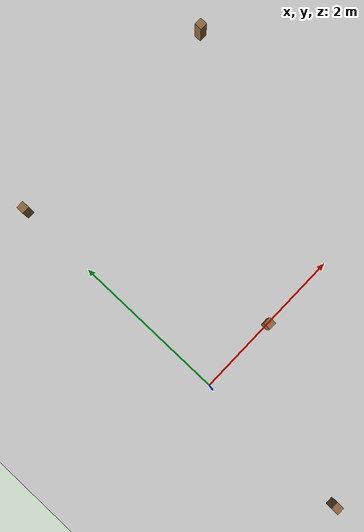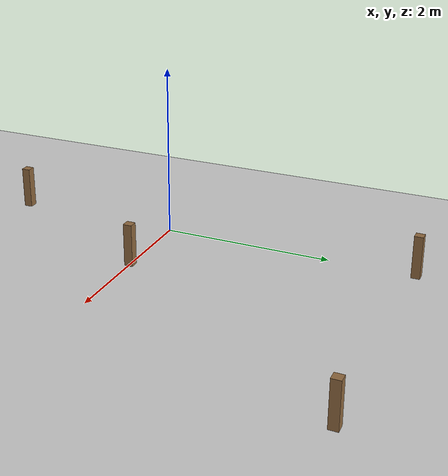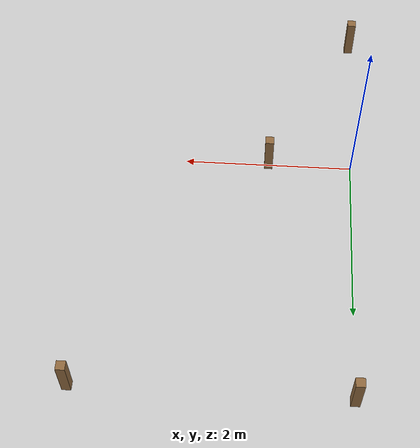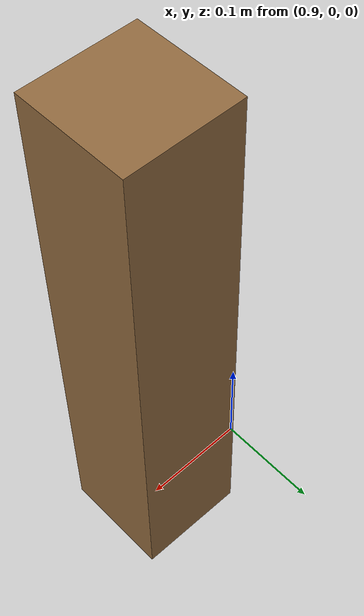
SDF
<?xml version="1.0"?>
<sdf version="1.6">
  <world name="maze">

    <plugin filename="libignition-gazebo-physics-system.so" name="ignition::gazebo::systems::Physics"/>
    <plugin filename="libignition-gazebo-sensors-system.so" name="ignition::gazebo::systems::Sensors">
      <render_engine>ogre2</render_engine>
    </plugin>
    <plugin filename="libignition-gazebo-user-commands-system.so" name="ignition::gazebo::systems::UserCommands"/>
    <plugin filename="libignition-gazebo-scene-broadcaster-system.so" name="ignition::gazebo::systems::SceneBroadcaster"/>

    <plugin filename="ignition-gazebo-contact-system" name="ignition::gazebo::systems::Contact"/>
    <plugin filename="libignition-gazebo-imu-system.so" name="ignition::gazebo::systems::Imu"/>
    <plugin filename="ignition-gazebo-magnetometer-system" name="ignition::gazebo::systems::Magnetometer"/>

    <scene>
      <grid>false</grid>
    </scene>

    <gui fullscreen="0">
      <!-- 3D scene -->
      <plugin filename="GzScene3D" name="3D View">
        <ignition-gui>
          <title>3D View</title>
          <property type="bool" key="showTitleBar">false</property>
          <property type="string" key="state">docked</property>
        </ignition-gui>
        <engine>ogre2</engine>
        <scene>scene</scene>
        <ambient_light>0.7 0.7 0.7</ambient_light>
        <background_color>0.8 0.8 0.8</background_color>
        <camera_pose>1 1 1 0 0.5 3.92</camera_pose>
      </plugin>

      <!-- World control -->
      <plugin filename="WorldControl" name="World control">
        <ignition-gui>
          <title>World control</title>
          <property type="bool" key="showTitleBar">false</property>
          <property type="bool" key="resizable">false</property>
          <property type="double" key="height">72</property>
          <property type="double" key="width">121</property>
          <property type="double" key="z">1</property>
          <property type="string" key="state">floating</property>
          <anchors target="3D View">
            <line own="left" target="left"/>
            <line own="bottom" target="bottom"/>
          </anchors>
        </ignition-gui>
        <play_pause>true</play_pause>
        <step>true</step>
        <start_paused>true</start_paused>

      </plugin>
      <!-- World statistics -->
      <plugin filename="WorldStats" name="World stats">
        <ignition-gui>
          <title>World stats</title>
          <property type="bool" key="showTitleBar">false</property>
          <property type="bool" key="resizable">false</property>
          <property type="double" key="height">110</property>
          <property type="double" key="width">290</property>
          <property type="double" key="z">1</property>
          <property type="string" key="state">floating</property>
          <anchors target="3D View">
            <line own="right" target="right"/>
            <line own="bottom" target="bottom"/>
          </anchors>
        </ignition-gui>
        <sim_time>true</sim_time>
        <real_time>true</real_time>
        <real_time_factor>true</real_time_factor>
        <iterations>true</iterations>
      </plugin>

    </gui>
    <light type="directional" name="sun">
      <pose>0 0 10 0 0 0</pose>
      <diffuse>0.8 0.8 0.8 1</diffuse>
      <specular>0.2 0.2 0.2 1</specular>
      <attenuation>
        <range>1000</range>
        <linear>0.01</linear>
        <constant>0.9</constant>
        <quadratic>0.001</quadratic>
      </attenuation>
      <direction>-0.5 0.1 -0.9</direction>
      <cast_shadows>true</cast_shadows>
    </light>

    <model name='obstale_1'>
      <pose frame=''>1 0 0.25 0 -0 0</pose>
      <static>1</static>
      <link name='obstacle_1'>
        <pose frame=''>0 0 0 0 -0 0</pose>
        <collision name='collision'>
          <geometry>
            <box>
              <size>0.1 0.1 0.5</size>
            </box>
          </geometry>
          <max_contacts>10</max_contacts>
          <surface>
            <contact>
              <ode/>
            </contact>
            <bounce/>
            <friction>
              <torsional>
                <ode/>
              </torsional>
              <ode/>
            </friction>
          </surface>
        </collision>
        <visual name='visual'>
          <geometry>
            <box>
              <size>0.1 0.1 0.5</size>
            </box>
          </geometry>
          <material>
            <ambient>0.5 0.5 0.5 1</ambient>
            <diffuse>0.57 0.417 0.25 1</diffuse>
            <specular>0.1 0.1 0.1 1</specular>
            <emissive>0 0 0 0</emissive>
          </material>
        </visual>
        <self_collide>0</self_collide>
        <kinematic>0</kinematic>
        <gravity>1</gravity>
      </link>
    </model>

        <model name='obstale_2'>
      <pose frame=''>0 3 0.25 0 -0 0</pose>
      <static>1</static>
      <link name='obstacle_2'>
        <pose frame=''>0 0 0 0 -0 0</pose>
        <collision name='collision'>
          <geometry>
            <box>
              <size>0.1 0.1 0.5</size>
            </box>
          </geometry>
          <max_contacts>10</max_contacts>
          <surface>
            <contact>
              <ode/>
            </contact>
            <bounce/>
            <friction>
              <torsional>
                <ode/>
              </torsional>
              <ode/>
            </friction>
          </surface>
        </collision>
        <visual name='visual'>
          <geometry>
            <box>
              <size>0.1 0.1 0.5</size>
            </box>
          </geometry>
          <material>
            <ambient>0.5 0.5 0.5 1</ambient>
            <diffuse>0.57 0.417 0.25 1</diffuse>
            <specular>0.1 0.1 0.1 1</specular>
            <emissive>0 0 0 0</emissive>
          </material>
        </visual>
        <self_collide>0</self_collide>
        <kinematic>0</kinematic>
        <gravity>1</gravity>
      </link>
    </model>

            <model name='obstale_3'>
      <pose frame=''>0 -2 0.25 0 -0 0</pose>
      <static>1</static>
      <link name='obstacle_3'>
        <pose frame=''>0 0 0 0 -0 0</pose>
        <collision name='collision'>
          <geometry>
            <box>
              <size>0.1 0.1 0.5</size>
            </box>
          </geometry>
          <max_contacts>10</max_contacts>
          <surface>
            <contact>
              <ode/>
            </contact>
            <bounce/>
            <friction>
              <torsional>
                <ode/>
              </torsional>
              <ode/>
            </friction>
          </surface>
        </collision>
        <visual name='visual'>
          <geometry>
            <box>
              <size>0.1 0.1 0.5</size>
            </box>
          </geometry>
          <material>
            <ambient>0.5 0.5 0.5 1</ambient>
            <diffuse>0.57 0.417 0.25 1</diffuse>
            <specular>0.1 0.1 0.1 1</specular>
            <emissive>0 0 0 0</emissive>
          </material>
        </visual>
        <self_collide>0</self_collide>
        <kinematic>0</kinematic>
        <gravity>1</gravity>
      </link>
    </model>

    <model name='obstale_4'>
      <pose frame=''>3 3 0.25 0 -0 0</pose>
      <static>1</static>
      <link name='obstacle_4'>
        <pose frame=''>0 0 0 0 -0 0</pose>
        <collision name='collision'>
          <geometry>
            <box>
              <size>0.1 0.1 0.5</size>
            </box>
          </geometry>
          <max_contacts>10</max_contacts>
          <surface>
            <contact>
              <ode/>
            </contact>
            <bounce/>
            <friction>
              <torsional>
                <ode/>
              </torsional>
              <ode/>
            </friction>
          </surface>
        </collision>
        <visual name='visual'>
          <geometry>
            <box>
              <size>0.1 0.1 0.5</size>
            </box>
          </geometry>
          <material>
            <ambient>0.5 0.5 0.5 1</ambient>
            <diffuse>0.57 0.417 0.25 1</diffuse>
            <specular>0.1 0.1 0.1 1</specular>
            <emissive>0 0 0 0</emissive>
          </material>
        </visual>
        <self_collide>0</self_collide>
        <kinematic>0</kinematic>
        <gravity>1</gravity>
      </link>
    </model>

    <model name='ground_plane'>
      <static>true</static>
      <link name='link'>
        <collision name='collision'>
          <geometry>
            <plane>
              <normal>0 0 1</normal>
              <size>100 100</size>
            </plane>
          </geometry>
          <surface>
            <friction>
              <ode/>
            </friction>
            <bounce/>
            <contact/>
          </surface>
        </collision>
        <visual name='visual'>
          <geometry>
            <plane>
              <normal>0 0 1</normal>
              <size>100 100</size>
            </plane>
          </geometry>
          <material>
            <ambient>0.8 0.8 0.8 1</ambient>
            <diffuse>0.8 0.8 0.8 1</diffuse>
            <specular>0.8 0.8 0.8 1</specular>
          </material>
        </visual>
        <pose>0 0 0 0 -0 0</pose>
        <inertial>
          <pose>0 0 0 0 -0 0</pose>
          <mass>1</mass>
          <inertia>
            <ixx>1</ixx>
            <ixy>0</ixy>
            <ixz>0</ixz>
            <iyy>1</iyy>
            <iyz>0</iyz>
            <izz>1</izz>
          </inertia>
        </inertial>
        <enable_wind>false</enable_wind>
      </link>
      <pose>0 0 0 0 -0 0</pose>
      <self_collide>false</self_collide>
    </model>

  </world>
</sdf>
